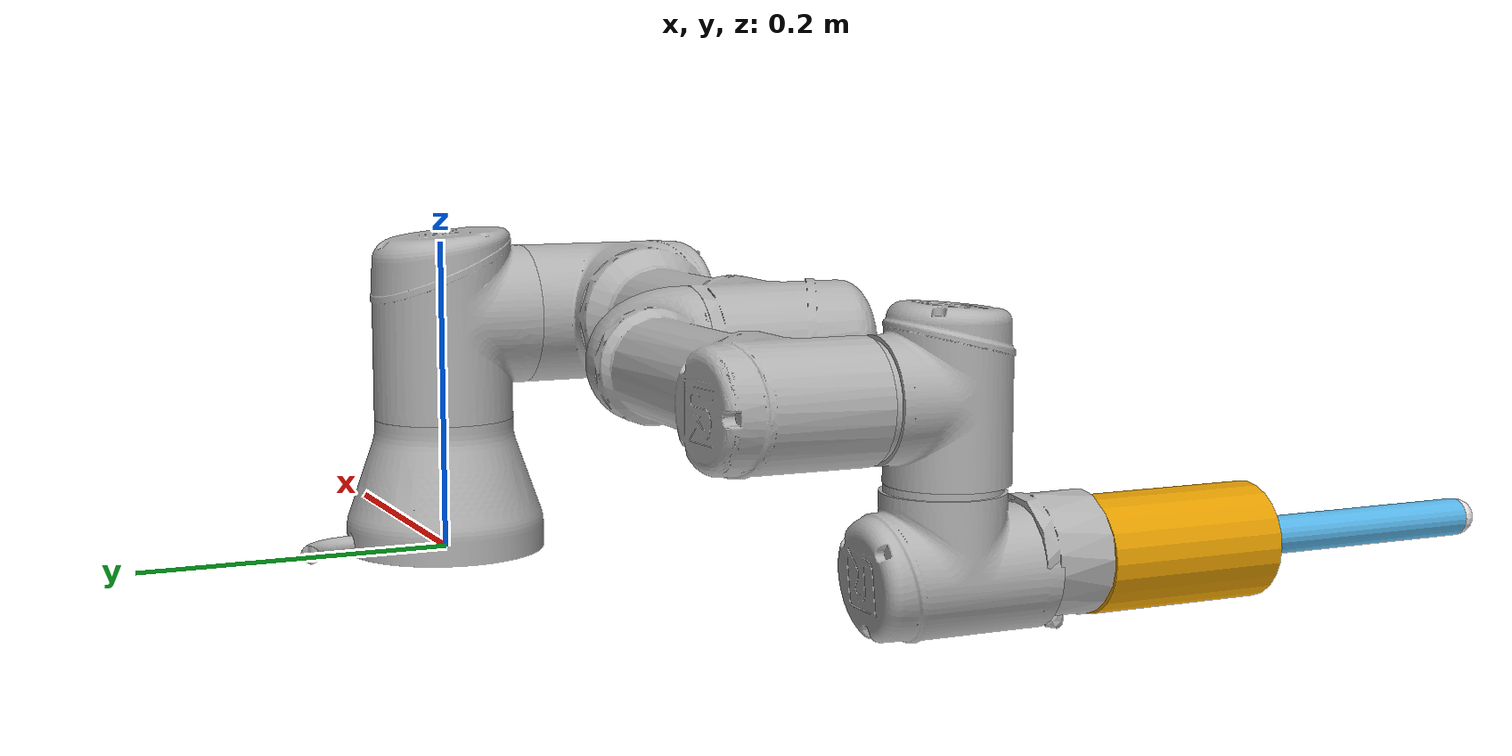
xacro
<?xml version="1.0"?>
<robot xmlns:xacro="http://wiki.ros.org/xacro"
       name="ur3" >

  <xacro:arg name="sensor_l"   default="0.10"/>
  <xacro:arg name="tool_l"     default="0.14"/>

  <xacro:arg name="transmission_hw_interface" default="hardware_interface/PositionJointInterface"/>

  <!-- common stuff: ros control plugin -->
  <xacro:include filename="$(find ur_description)/urdf/common.gazebo.xacro" />

  <!-- ur3 -->
  <xacro:include filename="$(find ur_description)/urdf/ur3T.urdf.xacro" />

  <!-- arm -->
  <xacro:ur3_robot prefix="" joint_limited="false"
    transmission_hw_interface="$(arg transmission_hw_interface)" sensor_l="$(arg sensor_l)" tool_l="$(arg tool_l)"
  />

  <link name="world" />

  <joint name="world_joint" type="fixed">
    <parent link="world" />
    <child link = "base_link" />
    <origin xyz="0 0 0" rpy="0.0 0.0 ${-pi}" /> <!-- To aling base frame with robot frame -->
  </joint>

</robot>

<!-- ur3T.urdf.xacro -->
<robot xmlns:xacro="http://wiki.ros.org/xacro">

<!--
  Author: Harun Tugal
-->

  <xacro:include filename="$(find ur_description)/urdf/urT.transmission.xacro" />
  <xacro:include filename="$(find ur_description)/urdf/urT.gazebo.xacro" />

   <xacro:macro name="cylinder_inertial" params="radius length mass *origin">
    <inertial>
      <mass value="${mass}" />
      <xacro:insert_block name="origin" />
      <inertia ixx="${0.0833333 * mass * (3 * radius * radius + length * length)}" ixy="0.0" ixz="0.0"
        iyy="${0.0833333 * mass * (3 * radius * radius + length * length)}" iyz="0.0"
        izz="${0.5 * mass * radius * radius}" />
    </inertial>
  </xacro:macro>

  <xacro:macro name="ur3_robot" params="sensor_l tool_l prefix joint_limited
    shoulder_pan_lower_limit:=${-pi}    shoulder_pan_upper_limit:=${pi}
    shoulder_lift_lower_limit:=${-pi}   shoulder_lift_upper_limit:=${pi}
    elbow_joint_lower_limit:=${-pi}    elbow_joint_upper_limit:=${pi}
    wrist_1_lower_limit:=${-pi}    wrist_1_upper_limit:=${pi}
    wrist_2_lower_limit:=${-pi}    wrist_2_upper_limit:=${pi}
    wrist_3_lower_limit:=${-pi}    wrist_3_upper_limit:=${pi}
    transmission_hw_interface:=hardware_interface/PositionJointInterface">

    <!-- Inertia parameters -->
    <xacro:property name="base_mass" value="2.0" />  <!-- This mass might be incorrect -->
    <xacro:property name="shoulder_mass" value="2.0" />
    <xacro:property name="upper_arm_mass" value="3.42" />
    <xacro:property name="forearm_mass" value="1.26" />
    <xacro:property name="wrist_1_mass" value="0.8" />
    <xacro:property name="wrist_2_mass" value="0.8" />
    <xacro:property name="wrist_3_mass" value="0.35" />

    <xacro:property name="shoulder_cog" value="0.0 -0.02 0.0" />
    <xacro:property name="upper_arm_cog" value="0.13 0.0 0.1157" />
    <xacro:property name="forearm_cog" value="0.05 0.0 0.0238" />
    <xacro:property name="wrist_1_cog" value="0.0 0.0 0.01" />
    <xacro:property name="wrist_2_cog" value="0.0 0.0 0.01" />
    <xacro:property name="wrist_3_cog" value="0.0 0.0 -0.02" />

    <!-- Kinematic model -->
    <!-- Properties from urcontrol.conf -->
    <xacro:property name="d1" value="0.1519" />
    <xacro:property name="a2" value="-0.24365" />
    <xacro:property name="a3" value="-0.21325" />
    <xacro:property name="d4" value="0.11235" />
    <xacro:property name="d5" value="0.08535" />
    <xacro:property name="d6" value="0.0819" />

    <!-- Arbitrary offsets for shoulder/elbow joints -->
    <xacro:property name="shoulder_offset" value="0.1198" />  <!-- measured from model -->
    <xacro:property name="elbow_offset" value="-0.0925" /> <!-- measured from model -->

    <!-- link lengths used in model -->
    <xacro:property name="shoulder_height" value="${d1}" />
    <xacro:property name="upper_arm_length" value="${-a2}" />
    <xacro:property name="forearm_length" value="${-a3}" />
    <xacro:property name="wrist_1_length" value="${d4 - elbow_offset - shoulder_offset}" />
    <xacro:property name="wrist_2_length" value="${d5}" />
    <xacro:property name="wrist_3_length" value="${d6}" />

    <link name="${prefix}base_link" >
      <visual>
        <geometry>
          <mesh filename="package://ur_description/meshes/ur3/visual/base.dae"/>
        </geometry>
        <material name="LightGrey">
          <color rgba="0.7 0.7 0.7 1.0"/>
        </material>
      </visual>
      <collision>
        <geometry>
          <mesh filename="package://ur_description/meshes/ur3/collision/base.stl"/>
        </geometry>
      </collision>
      <xacro:cylinder_inertial radius="0.075" length="0.038" mass="${base_mass}">
        <origin xyz="0.0 0.0 0.0" rpy="0 0 0" />
      </xacro:cylinder_inertial>
    </link>

    <joint name="${prefix}a_shoulder_pan_joint" type="revolute">
      <parent link="${prefix}base_link" />
      <child link = "${prefix}shoulder_link" />
      <origin xyz="0.0 0.0 ${shoulder_height}" rpy="0.0 0.0 0.0" />
      <axis xyz="0 0 1" />
      <xacro:unless value="${joint_limited}">
        <limit lower="${-2.0 * pi}" upper="${2.0 * pi}" effort="330.0" velocity="2.16"/>
      </xacro:unless>
      <xacro:if value="${joint_limited}">
        <limit lower="${shoulder_pan_lower_limit}" upper="${shoulder_pan_upper_limit}" effort="330.0" velocity="2.16"/>
      </xacro:if>
      <dynamics damping="0.0" friction="0.0"/>
    </joint>

    <link name="${prefix}shoulder_link">
      <visual>
        <geometry>
          <mesh filename="package://ur_description/meshes/ur3/visual/shoulder.dae"/>
        </geometry>
        <material name="LightGrey">
          <color rgba="0.7 0.7 0.7 1.0"/>
        </material>
      </visual>
      <collision>
        <geometry>
          <mesh filename="package://ur_description/meshes/ur3/collision/shoulder.stl"/>
        </geometry>
      </collision>
      <xacro:cylinder_inertial radius="0.075" length="0.178" mass="${shoulder_mass}">
        <origin xyz="0.0 0.0 0.0" rpy="0 0 0" />
      </xacro:cylinder_inertial>
    </link>

    <joint name="${prefix}b_shoulder_lift_joint" type="revolute">
      <parent link="${prefix}shoulder_link" />
      <child link = "${prefix}upper_arm_link" />
      <origin xyz="0.0 ${shoulder_offset} 0.0" rpy="0.0 ${pi / 2.0} 0.0" />
      <axis xyz="0 1 0" />
      <xacro:unless value="${joint_limited}">
        <limit lower="${-2.0 * pi}" upper="${2.0 * pi}" effort="330.0" velocity="2.16"/>
      </xacro:unless>
      <xacro:if value="${joint_limited}">
        <limit lower="${shoulder_lift_lower_limit}" upper="${shoulder_lift_upper_limit}" effort="330.0" velocity="2.16"/>
      </xacro:if>
      <dynamics damping="0.0" friction="0.0"/>
    </joint>

    <link name="${prefix}upper_arm_link">
      <visual>
        <geometry>
          <mesh filename="package://ur_description/meshes/ur3/visual/upperarm.dae"/>
        </geometry>
        <material name="LightGrey">
          <color rgba="0.7 0.7 0.7 1.0"/>
        </material>
      </visual>
      <collision>
        <geometry>
          <mesh filename="package://ur_description/meshes/ur3/collision/upperarm.stl"/>
        </geometry>
      </collision>
      <xacro:cylinder_inertial radius="0.075" length="${-a2}" mass="${upper_arm_mass}">
        <origin xyz="0.0 0.0 ${-a2/2.0}" rpy="0 0 0" />
      </xacro:cylinder_inertial>
    </link>

    <joint name="${prefix}elbow_joint" type="revolute">
      <parent link="${prefix}upper_arm_link" />
      <child link = "${prefix}forearm_link" />
      <origin xyz="0.0 ${elbow_offset} ${upper_arm_length}" rpy="0.0 0 0.0" />
      <axis xyz="0 1 0" />
      <xacro:unless value="${joint_limited}">
        <limit lower="${-pi}" upper="${pi}" effort="150.0" velocity="3.15"/>
      </xacro:unless>
      <xacro:if value="${joint_limited}">
        <limit lower="${elbow_joint_lower_limit}" upper="${elbow_joint_upper_limit}" effort="150.0" velocity="3.15"/>
      </xacro:if>
      <dynamics damping="0.0" friction="0.0"/>
    </joint>

    <link name="${prefix}forearm_link">
      <visual>
         <geometry>
          <mesh filename="package://ur_description/meshes/ur3/visual/forearm.dae"/>
        </geometry>
        <material name="LightGrey">
          <color rgba="0.7 0.7 0.7 1.0"/>
        </material>
      </visual>
      <collision>
        <geometry>
          <mesh filename="package://ur_description/meshes/ur3/collision/forearm.stl"/>
        </geometry>
      </collision>
      <xacro:cylinder_inertial radius="0.075" length="${-a3}" mass="${forearm_mass}">
        <origin xyz="0.0 0.0 ${-a3/2.0}" rpy="0 0 0" />
      </xacro:cylinder_inertial>
    </link>

    <joint name="${prefix}wrist_1_joint" type="revolute">
      <parent link="${prefix}forearm_link" />
      <child link = "${prefix}wrist_1_link" />
      <origin xyz="0.0 0.0 ${forearm_length}" rpy="0.0 ${pi / 2.0} 0.0" />
      <axis xyz="0 1 0" />
      <xacro:unless value="${joint_limited}">
        <limit lower="${-2.0 * pi}" upper="${2.0 * pi}" effort="54.0" velocity="3.2"/>
      </xacro:unless>
      <xacro:if value="${joint_limited}">
        <limit lower="${wrist_1_lower_limit}" upper="${wrist_1_upper_limit}" effort="54.0" velocity="3.2"/>
      </xacro:if>
      <dynamics damping="0.0" friction="0.0"/>
    </joint>

    <link name="${prefix}wrist_1_link">
      <visual>
        <geometry>
          <mesh filename="package://ur_description/meshes/ur3/visual/wrist1.dae"/>
        </geometry>
        <material name="LightGrey">
          <color rgba="0.7 0.7 0.7 1.0"/>
        </material>
      </visual>
      <collision>
        <geometry>
          <mesh filename="package://ur_description/meshes/ur3/collision/wrist1.stl"/>
        </geometry>
      </collision>
      <xacro:cylinder_inertial radius="0.075" length="0.12" mass="${wrist_1_mass}">
        <origin xyz="0.0 0.0 0.0" rpy="0 0 0" />
      </xacro:cylinder_inertial>
    </link>

    <joint name="${prefix}wrist_2_joint" type="revolute">
      <parent link="${prefix}wrist_1_link" />
      <child link = "${prefix}wrist_2_link" />
      <origin xyz="0.0 ${wrist_1_length} 0.0" rpy="0.0 0.0 0.0" />
      <axis xyz="0 0 1" />
      <xacro:unless value="${joint_limited}">
        <limit lower="${-2.0 * pi}" upper="${2.0 * pi}" effort="54.0" velocity="3.2"/>
      </xacro:unless>
      <xacro:if value="${joint_limited}">
        <limit lower="${wrist_2_lower_limit}" upper="${wrist_2_upper_limit}" effort="54.0" velocity="3.2"/>
      </xacro:if>
      <dynamics damping="0.0" friction="0.0"/>
    </joint>

    <link name="${prefix}wrist_2_link">
      <visual>
        <geometry>
          <mesh filename="package://ur_description/meshes/ur3/visual/wrist2.dae"/>
        </geometry>
        <material name="LightGrey">
          <color rgba="0.7 0.7 0.7 1.0"/>
        </material>
      </visual>
      <collision>
        <geometry>
          <mesh filename="package://ur_description/meshes/ur3/collision/wrist2.stl"/>
        </geometry>
      </collision>
      <xacro:cylinder_inertial radius="0.075" length="0.12" mass="${wrist_2_mass}">
        <origin xyz="0.0 0.0 0.0" rpy="0 0 0" />
      </xacro:cylinder_inertial>
    </link>

    <joint name="${prefix}wrist_3_joint" type="revolute">
      <parent link="${prefix}wrist_2_link" />
      <child link = "${prefix}wrist_3_link" />
      <origin xyz="0.0 0.0 ${wrist_2_length}" rpy="0.0 0 0.0" />
      <axis xyz="0 1 0" />
      <xacro:unless value="${joint_limited}">
        <limit lower="${-2.0 * pi}" upper="${2.0 * pi}" effort="54.0" velocity="3.2"/>
      </xacro:unless>
      <xacro:if value="${joint_limited}">
        <limit lower="${wrist_3_lower_limit}" upper="${wrist_3_upper_limit}" effort="54.0" velocity="3.2"/>
      </xacro:if>
      <dynamics damping="0.0" friction="0.0"/>
    </joint>

    <link name="${prefix}wrist_3_link">
      <visual>
        <geometry>
          <mesh filename="package://ur_description/meshes/ur3/visual/wrist3.dae"/>
        </geometry>
        <material name="LightGrey">
          <color rgba="0.7 0.7 0.7 1.0"/>
        </material>
      </visual>
      <collision>
        <geometry>
          <mesh filename="package://ur_description/meshes/ur3/collision/wrist3.stl"/>
        </geometry>
      </collision>
      <xacro:cylinder_inertial radius="0.075" length="0.12" mass="${wrist_3_mass}">
        <origin xyz="0.0 0.0 0.0" rpy="0 0 0" />
      </xacro:cylinder_inertial>
    </link>

    <joint name="${prefix}ee_fixed_joint" type="fixed">
      <parent link="${prefix}wrist_3_link" />
      <child link = "${prefix}ee_link" />
      <origin xyz="0.0 ${wrist_3_length} 0.0" rpy="${-pi/2} 0 0" />
    </joint>

    <link name="${prefix}ee_link">
      <visual>
        <geometry>
          <box size="0.01 0.01 0.01"/>
        </geometry>
        <origin rpy="0 0 0" xyz="0 0.0 0.0"/>  <!--xyz= -0.01 0 0 -->
      </visual>

      <collision>
        <geometry>
          <box size="0.01 0.01 0.01"/>
        </geometry>
        <origin rpy="0 0 0" xyz="0.0 0 0"/>  <!--xyz= -0.01 0 0 -->
      </collision>

	<!-- Included by HT: To get netft topic publication -->
      <inertial>  <!-- Source: https://bit.ly/387NqqL -->
         <origin xyz="0 0 0" rpy="0 0 0"/>
         <mass value="0.001"/>
      <inertia ixx="1.0" ixy="0.0" ixz="0.0" iyy="1.0" iyz="0.0" izz="1.0"/>
      </inertial>
    </link>

    <!-- ROS base_link to UR 'Base' Coordinates transform -->
    <!-- NOTE: this rotation is only needed as long as base_link itself is
                 not corrected wrt the real robot (ie: rotated over 180
                 degrees)
     -->

    <joint name="ee_joint_ft" type="fixed">
      <parent link="${prefix}ee_link"/>
      <child link="${prefix}ft_sensor"/>
      <origin xyz="0 0 ${sensor_l}" rpy="0 0 0"/>
    </joint>

	<!-- Include tool to the EE  name="visual_cylinder" -->
	<link name="${prefix}ft_sensor">
      	<inertial>
        	<origin xyz="0 0 0" rpy="0 0 0"/>
        	<mass value="0.001"/>
        	<inertia ixx="0.001"  ixy="0"  ixz="0" iyy="0.001" iyz="0" izz="0.001" />
      	</inertial>
       	<visual >
			<origin xyz="0 0 ${-sensor_l/2}" rpy="0 0 0"/>
         	<geometry>
           		<cylinder radius="0.03" length="${sensor_l}"/>
         	</geometry>
       	</visual>
       	<collision>
			<origin xyz="0 0 ${-sensor_l/2}" rpy="0 0 0"/>
           	<geometry>
             	<cylinder radius="0.03" length="${sensor_l}"/>
           	</geometry>
       	</collision>
		<material name="Black"/>
	</link>

	<!-- HT: Include a link and a joint for the force sensor attachement -->
    <joint name="ft_joint_ee" type="fixed">
      <parent link="${prefix}ft_sensor"/>
      <child link="${prefix}tool0"/>
      <origin xyz="0 0 0" rpy="0 0 0"/>
    </joint>

	<!-- Include tool to the EE  name="visual_cylinder" -->
	<link name="${prefix}tool0">
      	<inertial>
        	<origin xyz="0 0 0" rpy="0 0 0"/>
        	<mass value="0.01"/>
        	<inertia ixx="0.001"  ixy="0"  ixz="0" iyy="0.001" iyz="0" izz="0.001" />
      	</inertial>
       	<visual >
			<origin xyz="0 0 ${tool_l/2}" rpy="0 0 0"/>
         	<geometry>
           		<cylinder radius="0.01" length="${tool_l}"/>
         	</geometry>
       	</visual>
       	<collision>
			<origin xyz="0 0 ${tool_l/2}" rpy="0 0 0"/>
           	<geometry>
             	<cylinder radius="0.01" length="${tool_l}"/>
           	</geometry>
       	</collision>
		<material name="Grey"/>
	</link>

    <joint name="contact_joint" type="fixed">
      <parent link="${prefix}tool0"/>
      <child link="${prefix}contact_point"/>
      <origin xyz="0 0 ${tool_l}" rpy="0 0 0"/>
    </joint>

	<link name="${prefix}contact_point">
      	<inertial>
        	<origin xyz="0 0 0" rpy="0 0 0"/>
        	<mass value="0.001"/>
        	<inertia ixx="0.001"  ixy="0"  ixz="0" iyy="0.001" iyz="0" izz="0.001" />
      	</inertial>

	    <visual>
 	       <geometry>
          		<sphere radius="0.01"/>
 	       </geometry>
 	       <material name="white"/>
 	     </visual>
	</link>

<!--	To read FT measurement from a fixed joint, source: -->
	<gazebo reference="ft_joint_ee">
  		<disableFixedJointLumping>true</disableFixedJointLumping>
	</gazebo>

    <xacro:ur_arm_transmission prefix="${prefix}" hw_interface="${transmission_hw_interface}" />
    <xacro:ur_arm_gazebo prefix="${prefix}" />

  </xacro:macro>

</robot>
